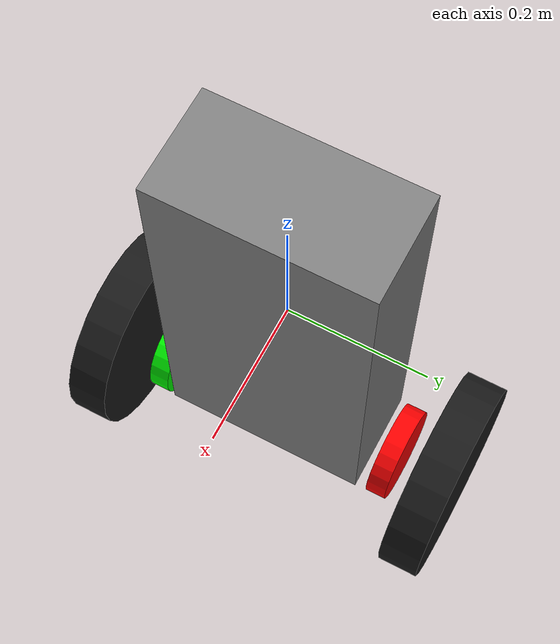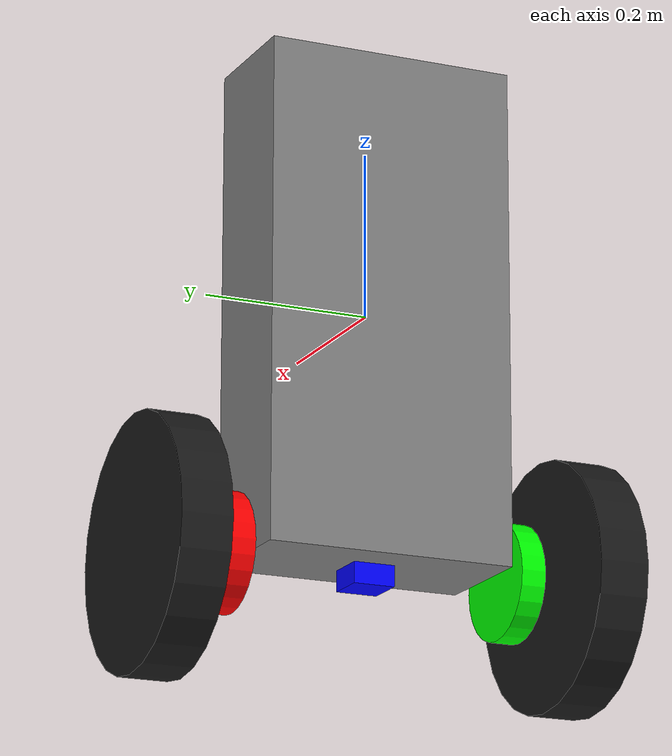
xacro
<?xml version="1.0"?>
<robot name="balance_bot" xmlns:xacro="http://www.ros.org/wiki/xacro">
  <!-- Declare the config_file parameter -->
  <xacro:arg name="config_file" default="" />

  <!-- Material Definitions -->
  <material name="chassis_gray">
    <color rgba="0.5 0.5 0.5 1.0"/>
  </material>
  <material name="left_wheel_black">
    <color rgba="0.1 0.1 0.1 1.0"/>
  </material>
  <material name="right_wheel_black">
    <color rgba="0.1 0.1 0.1 1.0"/>
  </material>
  <material name="imu_blue">
    <color rgba="0.0 0.0 1.0 1.0"/>
  </material>
  <material name="left_encoder_red">
    <color rgba="1.0 0.0 0.0 1.0"/>
  </material>
  <material name="right_encoder_green">
    <color rgba="0.0 1.0 0.0 1.0"/>
  </material>

  <!-- Parameters -->
  <xacro:property name="wheel_radius" value="0.15"/> <!-- 3x bigger -->
  <xacro:property name="wheel_width" value="0.06"/> <!-- 3x bigger -->
  <xacro:property name="chassis_height" value="0.6"/> <!-- 3x bigger -->
  <xacro:property name="chassis_width" value="0.3"/> <!-- 3x bigger -->
  <xacro:property name="chassis_depth" value="0.15"/> <!-- 3x bigger -->
  <xacro:property name="encoder_width" value="0.15"/> <!-- 3x bigger -->

  <!-- Chassis -->
  <link name="base_link">
    <visual>
      <geometry>
        <box size="${chassis_width} ${chassis_depth} ${chassis_height}"/>
      </geometry>
      <origin xyz="0 0 0" rpy="0 0 1.5708"/> <!-- Position chassis at wheel height -->
      <material name="chassis_gray"/>
    </visual>
    <collision>
      <geometry>
        <box size="${chassis_width} ${chassis_depth} ${chassis_height}"/>
      </geometry>
      <origin xyz="0 0 0" rpy="0 0 1.5708"/> <!-- Position chassis at wheel height -->
    </collision>
    <inertial>
      <mass value="1.0"/>
      <inertia ixx="0.01" ixy="0.0" ixz="0.0"
               iyy="0.01" iyz="0.0"
               izz="0.01"/>
      <origin xyz="0 0 0" rpy="0 0 0"/> <!-- Position chassis at wheel height -->
    </inertial>
  </link>

  <!-- Left Wheel -->
  <link name="left_wheel">
    <visual>
      <geometry>
        <cylinder radius="${wheel_radius}" length="${wheel_width}"/>
      </geometry>
      <origin xyz="0 0 0" rpy="1.5708 0 0"/>
      <material name="left_wheel_black"/>
    </visual>
    <collision>
      <geometry>
        <cylinder radius="${wheel_radius}" length="${wheel_width}"/>
      </geometry>
      <origin xyz="0 0 0" rpy="1.5708 0 0"/>
    </collision>
    <inertial>
      <mass value="0.2"/>
      <inertia ixx="0.001" ixy="0.0" ixz="0.0"
               iyy="0.001" iyz="0.0"
               izz="0.001"/>
    </inertial>
  </link>

  <!-- Right Wheel -->
  <link name="right_wheel">
    <visual>
      <geometry>
        <cylinder radius="${wheel_radius}" length="${wheel_width}"/>
      </geometry>
      <origin xyz="0 0 0" rpy="1.5708 0 0"/>
      <material name="right_wheel_black"/>
    </visual>
    <collision>
      <geometry>
        <cylinder radius="${wheel_radius}" length="${wheel_width}"/>
      </geometry>
      <origin xyz="0 0 0" rpy="1.5708 0 0"/>
    </collision>
    <inertial>
      <mass value="0.2"/>
      <inertia ixx="0.001" ixy="0.0" ixz="0.0"
               iyy="0.001" iyz="0.0"
               izz="0.001"/>
    </inertial>
  </link>

  <!-- Wheel Joints -->
  <joint name="left_wheel_joint" type="continuous">
    <parent link="base_link"/>
    <child link="left_wheel"/>
    <origin xyz="0 ${chassis_width/2 + wheel_width/2 + encoder_width/2} -${chassis_height/2}" rpy="0 0 0"/> <!-- Align wheel center with bottom of chassis -->
    <axis xyz="0 1 0"/>
    <dynamics damping="0.1" friction="0.05"/>
  </joint>

  <joint name="right_wheel_joint" type="continuous">
    <parent link="base_link"/>
    <child link="right_wheel"/>
    <origin xyz="0 -${chassis_width/2 + wheel_width/2 + encoder_width/2} -${chassis_height/2}" rpy="0 0 0"/> <!-- Align wheel center with bottom of chassis -->
    <axis xyz="0 1 0"/>
    <dynamics damping="0.1" friction="0.05"/>
  </joint>

  <!-- IMU -->
  <link name="imu_link">
    <visual>
      <geometry>
        <box size="0.05 0.05 0.05"/>
      </geometry>
      <origin xyz="0 0 0" rpy="0 0 0"/>
      <material name="imu_blue"/>
    </visual>
    <!-- Add collision and inertial properties -->
    <collision>
      <geometry>
        <box size="0.05 0.05 0.05"/>
      </geometry>
    </collision>
    <inertial>
      <mass value="0.01"/>
      <inertia ixx="0.0001" ixy="0.0" ixz="0.0" iyy="0.0001" iyz="0.0" izz="0.0001"/>
    </inertial>

    <!-- Gazebo plugin info -->

  </link>

  <joint name="imu_joint" type="fixed">
    <parent link="base_link"/>
    <child link="imu_link"/>
    <origin xyz="0 0 -${chassis_height/2}" rpy="0 0 0"/>
  </joint>

  <!-- Encoders -->
  <link name="left_encoder">
  <visual>
    <geometry>
      <cylinder radius="0.07" length="0.03"/>
    </geometry> <!--chassis_height chassis_width chassis_depth-->
    <origin xyz="0 0 0" rpy="1.5708 0 0"/> <!-- Just behind the left wheel, sharing the same axis -->
    <material name="left_encoder_red"/>
  </visual>
</link>

<joint name="left_encoder_to_chassis_joint" type="fixed">
  <parent link="base_link"/> <!-- Attach to the chassis -->
  <child link="left_encoder"/> <!-- Connect to the left encoder -->
  <origin xyz="0 ${chassis_width/2 + wheel_width/2} -${chassis_height/2}" rpy="0 0 0"/> <!-- No offset or rotation -->
</joint>

  <link name="right_encoder">
    <visual>
      <geometry>
        <cylinder radius="0.07" length="0.03"/>
      </geometry>
      <origin xyz="0 0 0" rpy="1.5708 0 0"/> <!-- Align with wheel -->
      <material name="right_encoder_green"/>
    </visual>
  </link>

<joint name="right_encoder_to_chassis_joint" type="fixed">
  <parent link="base_link"/> <!-- Attach to the chassis -->
  <child link="right_encoder"/> <!-- Connect to the right encoder -->
  <origin xyz="0 -${chassis_width/2 + wheel_width/2} -${chassis_height/2}" rpy="0 0 0"/> <!-- No offset or rotation -->
</joint>

<!-- Gazebo Plugins -->
<gazebo reference="imu_link">
  <sensor name="imu_sensor" type="imu">
    <always_on>true</always_on>
    <update_rate>100</update_rate>
    <visualize>true</visualize>
    <pose>0 0 0 0 0 0</pose>

    <imu>
      <angular_velocity>
        <x>
          <noise type="gaussian">
            <mean>0.0</mean>
            <stddev>0.0002</stddev>
          </noise>
        </x>
        <y>
          <noise type="gaussian">
            <mean>0.0</mean>
            <stddev>0.0002</stddev>
          </noise>
        </y>
        <z>
          <noise type="gaussian">
            <mean>0.0</mean>
            <stddev>0.0002</stddev>
          </noise>
        </z>
      </angular_velocity>
      <linear_acceleration>
        <x>
          <noise type="gaussian">
            <mean>0.0</mean>
            <stddev>0.017</stddev>
          </noise>
        </x>
        <y>
          <noise type="gaussian">
            <mean>0.0</mean>
            <stddev>0.017</stddev>
          </noise>
        </y>
        <z>
          <noise type="gaussian">
            <mean>0.0</mean>
            <stddev>0.017</stddev>
          </noise>
        </z>
      </linear_acceleration>
    </imu>

    <topic>__default_topic__</topic>
    <plugin name="imu_plugin" filename="libgazebo_ros_imu_sensor.so">
      <bodyName>imu_link</bodyName>
      <updateRateHZ>100.0</updateRateHZ>
      <gaussianNoise>0.001</gaussianNoise>
      <xyzOffset>0 0 0</xyzOffset>
      <rpyOffset>0 0 0</rpyOffset>
      <frameName>imu_link</frameName>
      <initialOrientationAsReference>false</initialOrientationAsReference>
    </plugin>
  </sensor>
</gazebo>

  <gazebo>
  <plugin name="gazebo_ros2_control" filename="libgazebo_ros2_control.so">
    <robot_param>robot_description</robot_param>
    <parameters>$(arg config_file)</parameters>
    <robot_param_node>robot_state_publisher</robot_param_node>
     <control_period>0.001</control_period>
  </plugin>
</gazebo>

  <!-- Transmissions -->
  <transmission name="left_wheel_transmission">
    <type>transmission_interface/SimpleTransmission</type>
    <joint name="left_wheel_joint">
      <hardwareInterface>hardware_interface/EffortJointInterface</hardwareInterface>
    </joint>
    <actuator name="left_wheel_motor">
      <mechanicalReduction>1</mechanicalReduction>
    </actuator>
  </transmission>

  <transmission name="right_wheel_transmission">
    <type>transmission_interface/SimpleTransmission</type>
    <joint name="right_wheel_joint">
      <hardwareInterface>hardware_interface/EffortJointInterface</hardwareInterface>
    </joint>
    <actuator name="right_wheel_motor">
      <mechanicalReduction>1</mechanicalReduction>
    </actuator>
  </transmission>

  <!-- ros2_control Configuration -->
  <ros2_control name="BalanceBotHardware" type="system">
    <hardware>
      <plugin>gazebo_ros2_control/GazeboSystem</plugin>
    </hardware>
    <joint name="left_wheel_joint">
      <command_interface name="effort"/>
      <state_interface name="position"/>
      <state_interface name="velocity"/>
    </joint>
    <joint name="right_wheel_joint">
      <command_interface name="effort"/>
      <state_interface name="position"/>
      <state_interface name="velocity"/>
    </joint>
  </ros2_control>

</robot>
